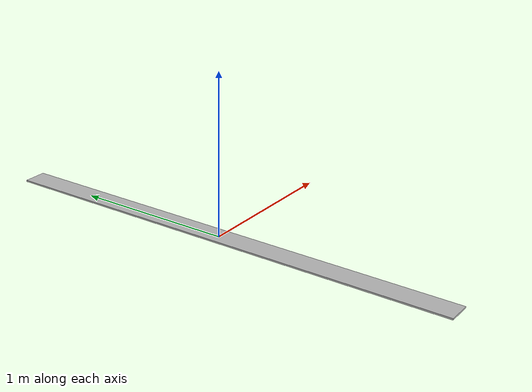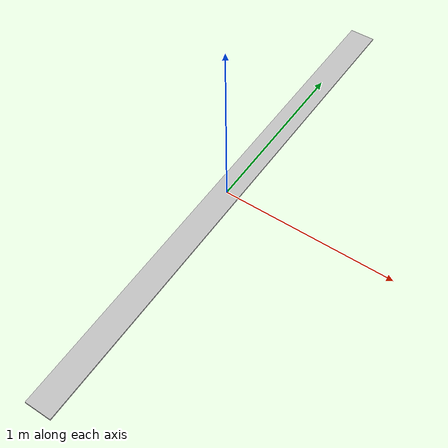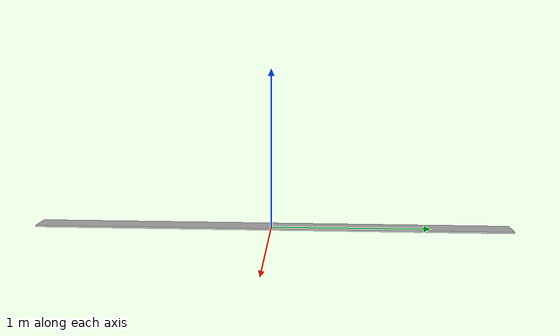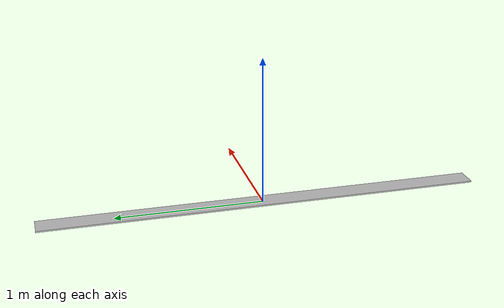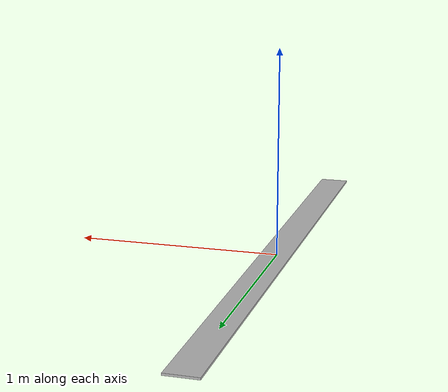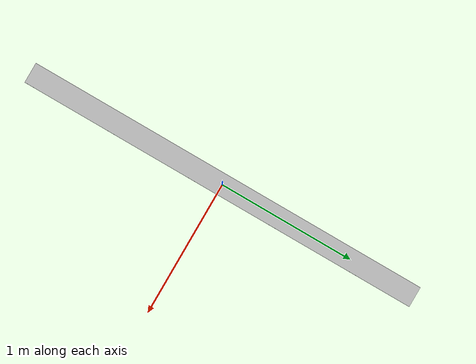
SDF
<?xml version="1.0" ?>
<sdf version="1.7">
  <model name="sari_cizgi">
    <static>true</static>
    <link name="link">
      <visual name="visual">
        <geometry><mesh><uri>model://sari_cizgi/meshes/sari_cizgi.obj</uri></mesh></geometry>
      </visual>
      <collision name="collision">
        <geometry><box><size>1 1 0.01</size></box></geometry>
      </collision>
    </link>
  </model>
</sdf>
